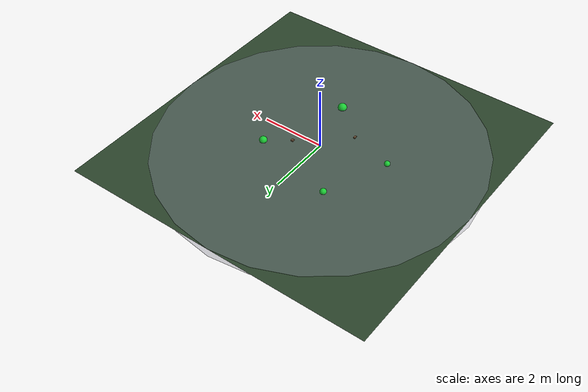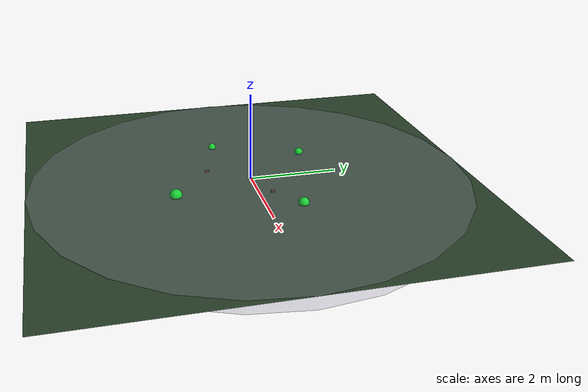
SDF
<?xml version="1.0"?>
<sdf version="1.6">
  <world name="agar_plate">

    <!-- Physics: slow timestep for stable soft-body simulation -->
    <physics type="ode">
      <max_step_size>0.001</max_step_size>
      <real_time_factor>1.0</real_time_factor>
      <real_time_update_rate>1000</real_time_update_rate>
      <ode>
        <solver>
          <type>quick</type>
          <iters>50</iters>
          <sor>1.3</sor>
        </solver>
      </ode>
    </physics>

    <!-- Lighting -->
    <light name="sun" type="directional">
      <cast_shadows>true</cast_shadows>
      <pose>0 0 10 0 0 0</pose>
      <diffuse>0.9 0.9 0.9 1</diffuse>
      <specular>0.3 0.3 0.3 1</specular>
      <direction>-0.5 0.2 -0.9</direction>
    </light>
    <light name="ambient_fill" type="directional">
      <cast_shadows>false</cast_shadows>
      <pose>0 0 5 0 0 0</pose>
      <diffuse>0.3 0.35 0.3 1</diffuse>
      <specular>0 0 0 1</specular>
      <direction>0.5 -0.2 -0.7</direction>
    </light>

    <!-- Agar plate ground (flat, slightly greenish) -->
    <model name="agar_plate">
      <static>true</static>
      <link name="plate">
        <collision name="collision">
          <geometry>
            <plane><normal>0 0 1</normal><size>10 10</size></plane>
          </geometry>
          <surface>
            <friction><ode><mu>0.4</mu><mu2>0.4</mu2></ode></friction>
          </surface>
        </collision>
        <visual name="visual">
          <geometry>
            <plane><normal>0 0 1</normal><size>10 10</size></plane>
          </geometry>
          <material>
            <ambient>0.15 0.25 0.15 1</ambient>
            <diffuse>0.18 0.28 0.18 1</diffuse>
            <specular>0.05 0.05 0.05 1</specular>
          </material>
        </visual>
      </link>
    </model>

    <!-- Petri dish wall (cylindrical boundary) -->
    <model name="petri_wall">
      <static>true</static>
      <link name="wall">
        <collision name="collision">
          <geometry><cylinder><radius>5.0</radius><length>0.3</length></cylinder></geometry>
        </collision>
        <visual name="visual">
          <geometry><cylinder><radius>5.0</radius><length>0.3</length></cylinder></geometry>
          <material>
            <ambient>0.6 0.6 0.7 0.3</ambient>
            <diffuse>0.6 0.6 0.7 0.3</diffuse>
          </material>
        </visual>
        <pose>0 0 -0.15 0 0 0</pose>
      </link>
    </model>

    <!-- Food source 1 (E. coli lawn patch — appears as green sphere) -->
    <model name="food_1">
      <static>true</static>
      <pose>1.5 0.8 0.02 0 0 0</pose>
      <link name="food">
        <visual name="visual">
          <geometry><sphere><radius>0.12</radius></sphere></geometry>
          <material>
            <ambient>0.1 0.8 0.2 0.9</ambient>
            <diffuse>0.1 0.8 0.2 0.9</diffuse>
            <emissive>0.0 0.3 0.05 1</emissive>
          </material>
        </visual>
        <collision name="collision">
          <geometry><sphere><radius>0.12</radius></sphere></geometry>
        </collision>
      </link>
    </model>

    <model name="food_2">
      <static>true</static>
      <pose>-1.2 1.5 0.02 0 0 0</pose>
      <link name="food">
        <visual name="visual">
          <geometry><sphere><radius>0.10</radius></sphere></geometry>
          <material><ambient>0.1 0.8 0.2 0.9</ambient><diffuse>0.1 0.8 0.2 0.9</diffuse>
            <emissive>0.0 0.3 0.05 1</emissive></material>
        </visual>
        <collision name="collision"><geometry><sphere><radius>0.10</radius></sphere></geometry></collision>
      </link>
    </model>

    <model name="food_3">
      <static>true</static>
      <pose>0.5 -1.8 0.02 0 0 0</pose>
      <link name="food">
        <visual name="visual">
          <geometry><sphere><radius>0.14</radius></sphere></geometry>
          <material><ambient>0.1 0.8 0.2 0.9</ambient><diffuse>0.1 0.8 0.2 0.9</diffuse>
            <emissive>0.0 0.3 0.05 1</emissive></material>
        </visual>
        <collision name="collision"><geometry><sphere><radius>0.14</radius></sphere></geometry></collision>
      </link>
    </model>

    <model name="food_4">
      <static>true</static>
      <pose>-2.0 -0.5 0.02 0 0 0</pose>
      <link name="food">
        <visual name="visual">
          <geometry><sphere><radius>0.09</radius></sphere></geometry>
          <material><ambient>0.1 0.8 0.2 0.9</ambient><diffuse>0.1 0.8 0.2 0.9</diffuse>
            <emissive>0.0 0.3 0.05 1</emissive></material>
        </visual>
        <collision name="collision"><geometry><sphere><radius>0.09</radius></sphere></geometry></collision>
      </link>
    </model>

    <!-- Small obstacles (simulate dirt particles on agar) -->
    <model name="obstacle_1">
      <static>true</static>
      <pose>0.8 0.3 0.02 0 0 0</pose>
      <link name="obs">
        <collision name="collision"><geometry><box><size>0.08 0.08 0.04</size></box></geometry></collision>
        <visual name="visual"><geometry><box><size>0.08 0.08 0.04</size></box></geometry>
          <material><ambient>0.4 0.3 0.2 1</ambient><diffuse>0.4 0.3 0.2 1</diffuse></material>
        </visual>
      </link>
    </model>

    <model name="obstacle_2">
      <static>true</static>
      <pose>-0.6 -0.9 0.02 0 0 0</pose>
      <link name="obs">
        <collision name="collision"><geometry><box><size>0.06 0.10 0.04</size></box></geometry></collision>
        <visual name="visual"><geometry><box><size>0.06 0.10 0.04</size></box></geometry>
          <material><ambient>0.4 0.3 0.2 1</ambient><diffuse>0.4 0.3 0.2 1</diffuse></material>
        </visual>
      </link>
    </model>

    <!-- Grid reference markers (optional, dim) -->
    <model name="origin_marker">
      <static>true</static>
      <pose>0 0 0.001 0 0 0</pose>
      <link name="marker">
        <visual name="visual">
          <geometry><cylinder><radius>0.03</radius><length>0.002</length></cylinder></geometry>
          <material><ambient>0.8 0.2 0.2 0.6</ambient><diffuse>0.8 0.2 0.2 0.6</diffuse></material>
        </visual>
      </link>
    </model>

  </world>
</sdf>
